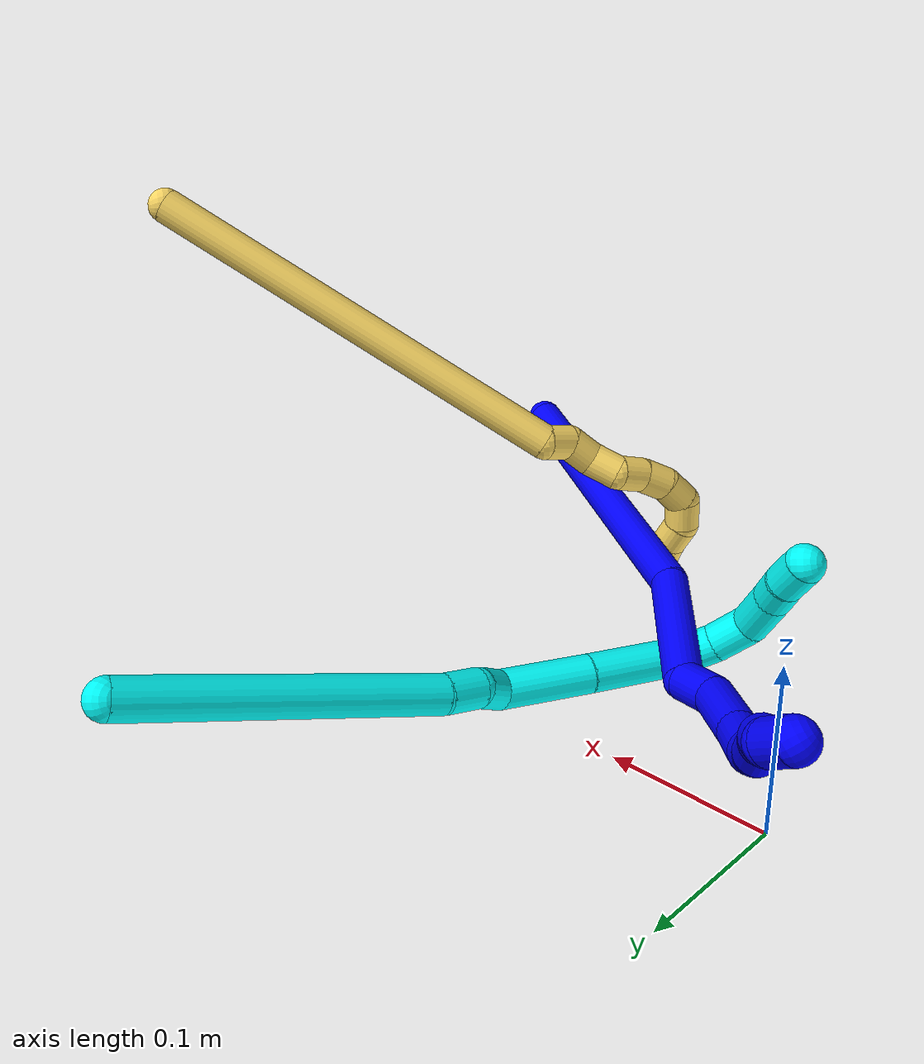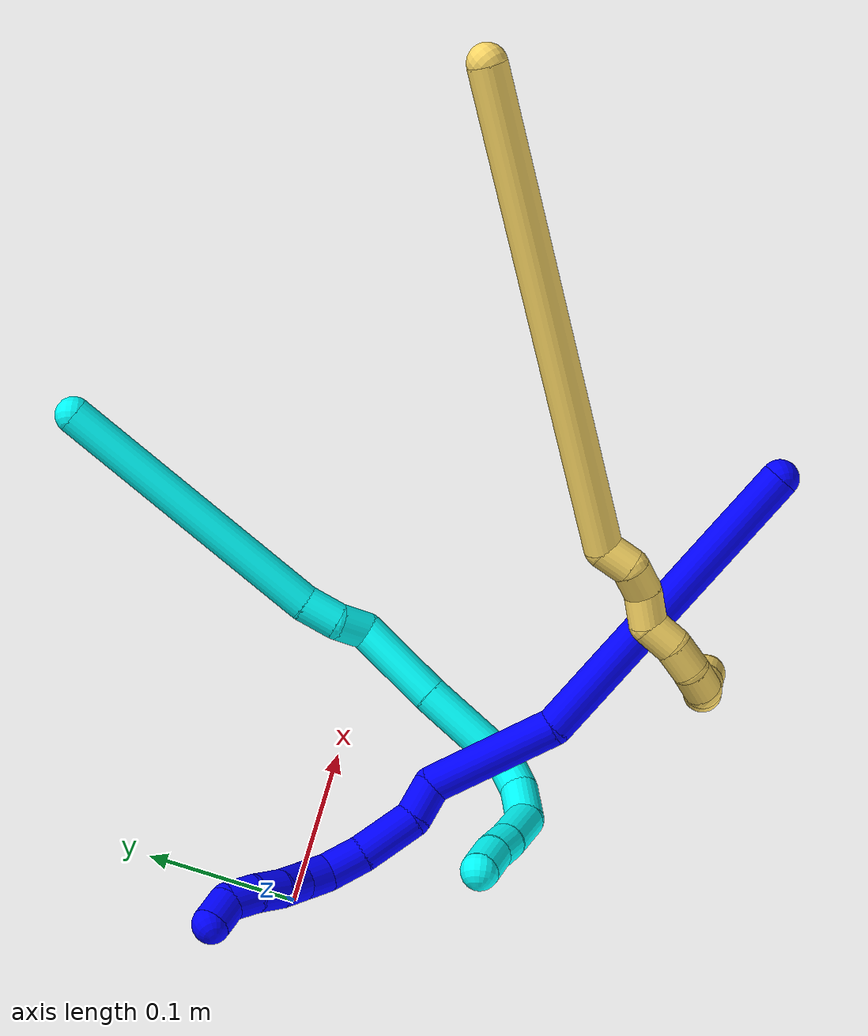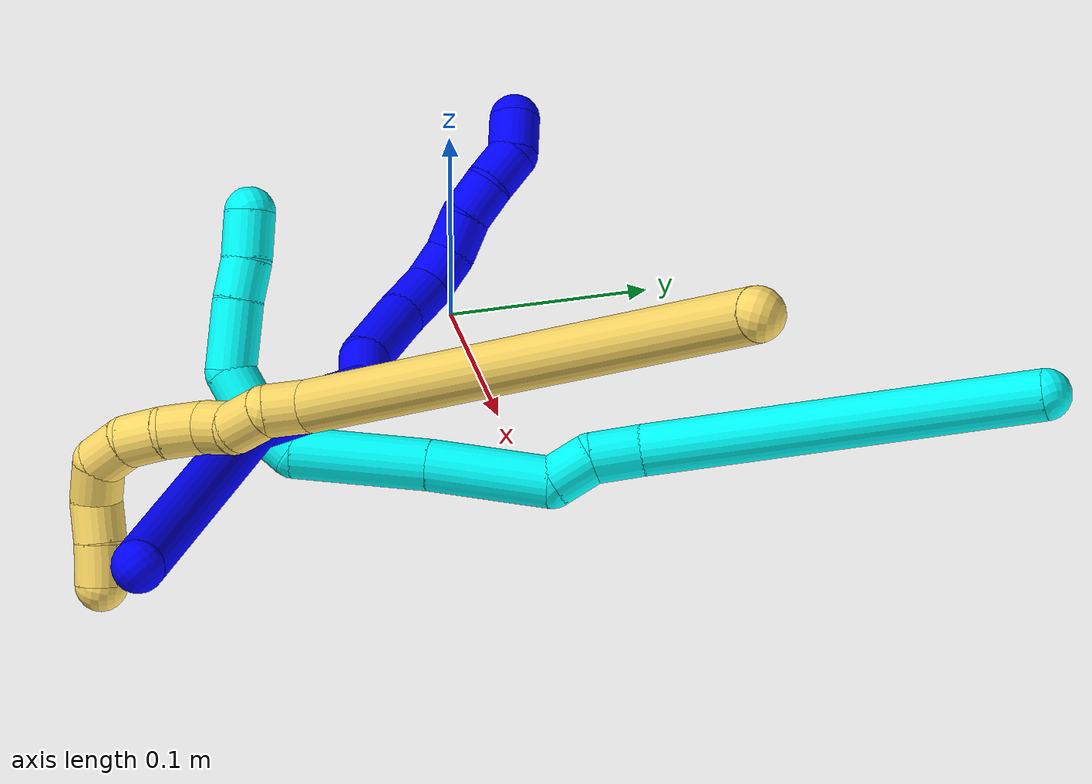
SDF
<sdf version="1.7">
 <world name="default">
  <model name="1">
   <static>0</static>
   <link name="1">
    <collision name="collision-cylinder-e_1_1_4">
     <pose>0.028007 0.102945 -0.020155 -1.76414 0.260901 -0.316087</pose>
     <geometry><cylinder><radius>0.0125</radius><length>0.217148</length></cylinder></geometry>
     <surface>
      <friction><ode><mu>1.16</mu><mu2>1.16</mu2><slip1>0</slip1><slip2>0</slip2></ode></friction>
      <contact><ode><kp>1e+06</kp><kd>1</kd><max_vel>0</max_vel><min_depth>0.001</min_depth></ode></contact>
     </surface>
    </collision>
    <visual name="visual-cylinder-e_1_1_4">
     <pose>0.028007 0.102945 -0.020155 -1.76414 0.260901 -0.316087</pose>
     <geometry><cylinder><radius>0.0125</radius><length>0.217148</length></cylinder></geometry>
     <material><ambient>0 0 1 1</ambient></material>
    </visual>
    <collision name="collision-cylinder-e_2_4_5">
     <pose>0.057969 0.25062 -0.03468 -1.44558 0.043336 -0.038225</pose>
     <geometry><cylinder><radius>0.0125</radius><length>0.09025</length></cylinder></geometry>
     <surface>
      <friction><ode><mu>1.16</mu><mu2>1.16</mu2><slip1>0</slip1><slip2>0</slip2></ode></friction>
      <contact><ode><kp>1e+06</kp><kd>1</kd><max_vel>0</max_vel><min_depth>0.001</min_depth></ode></contact>
     </surface>
    </collision>
    <visual name="visual-cylinder-e_2_4_5">
     <pose>0.057969 0.25062 -0.03468 -1.44558 0.043336 -0.038225</pose>
     <geometry><cylinder><radius>0.0125</radius><length>0.09025</length></cylinder></geometry>
     <material><ambient>0 0 1 1</ambient></material>
    </visual>
    <collision name="collision-cylinder-e_3_5_6">
     <pose>0.061685 0.305932 -0.036057 -2.15561 0.137947 -0.255774</pose>
     <geometry><cylinder><radius>0.0125</radius><length>0.025627</length></cylinder></geometry>
     <surface>
      <friction><ode><mu>1.16</mu><mu2>1.16</mu2><slip1>0</slip1><slip2>0</slip2></ode></friction>
      <contact><ode><kp>1e+06</kp><kd>1</kd><max_vel>0</max_vel><min_depth>0.001</min_depth></ode></contact>
     </surface>
    </collision>
    <visual name="visual-cylinder-e_3_5_6">
     <pose>0.061685 0.305932 -0.036057 -2.15561 0.137947 -0.255774</pose>
     <geometry><cylinder><radius>0.0125</radius><length>0.025627</length></cylinder></geometry>
     <material><ambient>0 0 1 1</ambient></material>
    </visual>
    <collision name="collision-cylinder-e_4_6_7">
     <pose>0.061431 0.336282 -0.047275 -1.78073 -0.099442 0.12281</pose>
     <geometry><cylinder><radius>0.0125</radius><length>0.040622</length></cylinder></geometry>
     <surface>
      <friction><ode><mu>1.16</mu><mu2>1.16</mu2><slip1>0</slip1><slip2>0</slip2></ode></friction>
      <contact><ode><kp>1e+06</kp><kd>1</kd><max_vel>0</max_vel><min_depth>0.001</min_depth></ode></contact>
     </surface>
    </collision>
    <visual name="visual-cylinder-e_4_6_7">
     <pose>0.061431 0.336282 -0.047275 -1.78073 -0.099442 0.12281</pose>
     <geometry><cylinder><radius>0.0125</radius><length>0.040622</length></cylinder></geometry>
     <material><ambient>0 0 1 1</ambient></material>
    </visual>
    <collision name="collision-cylinder-e_5_7_8">
     <pose>0.056379 0.36856 -0.053654 -1.74236 -0.234674 0.278308</pose>
     <geometry><cylinder><radius>0.0125</radius><length>0.026111</length></cylinder></geometry>
     <surface>
      <friction><ode><mu>1.16</mu><mu2>1.16</mu2><slip1>0</slip1><slip2>0</slip2></ode></friction>
      <contact><ode><kp>1e+06</kp><kd>1</kd><max_vel>0</max_vel><min_depth>0.001</min_depth></ode></contact>
     </surface>
    </collision>
    <visual name="visual-cylinder-e_5_7_8">
     <pose>0.056379 0.36856 -0.053654 -1.74236 -0.234674 0.278308</pose>
     <geometry><cylinder><radius>0.0125</radius><length>0.026111</length></cylinder></geometry>
     <material><ambient>0 0 1 1</ambient></material>
    </visual>
    <collision name="collision-cylinder-e_6_8_9">
     <pose>0.047414 0.388661 -0.058841 -1.94941 -0.627873 0.892729</pose>
     <geometry><cylinder><radius>0.0125</radius><length>0.020186</length></cylinder></geometry>
     <surface>
      <friction><ode><mu>1.16</mu><mu2>1.16</mu2><slip1>0</slip1><slip2>0</slip2></ode></friction>
      <contact><ode><kp>1e+06</kp><kd>1</kd><max_vel>0</max_vel><min_depth>0.001</min_depth></ode></contact>
     </surface>
    </collision>
    <visual name="visual-cylinder-e_6_8_9">
     <pose>0.047414 0.388661 -0.058841 -1.94941 -0.627873 0.892729</pose>
     <geometry><cylinder><radius>0.0125</radius><length>0.020186</length></cylinder></geometry>
     <material><ambient>0 0 1 1</ambient></material>
    </visual>
    <collision name="collision-cylinder-e_7_9_10">
     <pose>0.03422 0.401347 -0.066477 -2.30686 -0.812843 1.54097</pose>
     <geometry><cylinder><radius>0.0125</radius><length>0.020007</length></cylinder></geometry>
     <surface>
      <friction><ode><mu>1.16</mu><mu2>1.16</mu2><slip1>0</slip1><slip2>0</slip2></ode></friction>
      <contact><ode><kp>1e+06</kp><kd>1</kd><max_vel>0</max_vel><min_depth>0.001</min_depth></ode></contact>
     </surface>
    </collision>
    <visual name="visual-cylinder-e_7_9_10">
     <pose>0.03422 0.401347 -0.066477 -2.30686 -0.812843 1.54097</pose>
     <geometry><cylinder><radius>0.0125</radius><length>0.020007</length></cylinder></geometry>
     <material><ambient>0 0 1 1</ambient></material>
    </visual>
    <collision name="collision-cylinder-e_8_10_11">
     <pose>0.019768 0.412901 -0.073688 -1.95268 -0.801534 1.1197</pose>
     <geometry><cylinder><radius>0.0125</radius><length>0.020007</length></cylinder></geometry>
     <surface>
      <friction><ode><mu>1.16</mu><mu2>1.16</mu2><slip1>0</slip1><slip2>0</slip2></ode></friction>
      <contact><ode><kp>1e+06</kp><kd>1</kd><max_vel>0</max_vel><min_depth>0.001</min_depth></ode></contact>
     </surface>
    </collision>
    <visual name="visual-cylinder-e_8_10_11">
     <pose>0.019768 0.412901 -0.073688 -1.95268 -0.801534 1.1197</pose>
     <geometry><cylinder><radius>0.0125</radius><length>0.020007</length></cylinder></geometry>
     <material><ambient>0 0 1 1</ambient></material>
    </visual>
    <collision name="collision-cylinder-e_9_11_12">
     <pose>0.006914 0.427291 -0.078517 -1.84558 -0.602349 0.778711</pose>
     <geometry><cylinder><radius>0.0125</radius><length>0.020005</length></cylinder></geometry>
     <surface>
      <friction><ode><mu>1.16</mu><mu2>1.16</mu2><slip1>0</slip1><slip2>0</slip2></ode></friction>
      <contact><ode><kp>1e+06</kp><kd>1</kd><max_vel>0</max_vel><min_depth>0.001</min_depth></ode></contact>
     </surface>
    </collision>
    <visual name="visual-cylinder-e_9_11_12">
     <pose>0.006914 0.427291 -0.078517 -1.84558 -0.602349 0.778711</pose>
     <geometry><cylinder><radius>0.0125</radius><length>0.020005</length></cylinder></geometry>
     <material><ambient>0 0 1 1</ambient></material>
    </visual>
    <collision name="collision-cylinder-e_10_12_2">
     <pose>-0.001556 0.441785 -0.087786 -2.3909 -0.283624 0.695241</pose>
     <geometry><cylinder><radius>0.0125</radius><length>0.020036</length></cylinder></geometry>
     <surface>
      <friction><ode><mu>1.16</mu><mu2>1.16</mu2><slip1>0</slip1><slip2>0</slip2></ode></friction>
      <contact><ode><kp>1e+06</kp><kd>1</kd><max_vel>0</max_vel><min_depth>0.001</min_depth></ode></contact>
     </surface>
    </collision>
    <visual name="visual-cylinder-e_10_12_2">
     <pose>-0.001556 0.441785 -0.087786 -2.3909 -0.283624 0.695241</pose>
     <geometry><cylinder><radius>0.0125</radius><length>0.020036</length></cylinder></geometry>
     <material><ambient>0 0 1 1</ambient></material>
    </visual>
    <collision name="collision-sphere-2">
     <pose>-0.00436 0.448346 -0.094819 0 -0 0</pose>
     <geometry><sphere><radius>0.0125</radius></sphere></geometry>
     <surface>
      <friction><ode><mu>1.16</mu><mu2>1.16</mu2><slip1>0</slip1><slip2>0</slip2></ode></friction>
      <contact><ode><kp>1e+06</kp><kd>1</kd><max_vel>0</max_vel><min_depth>0.001</min_depth></ode></contact>
     </surface>
    </collision>
    <visual name="visual-sphere-2">
     <pose>-0.00436 0.448346 -0.094819 0 -0 0</pose>
     <geometry><sphere><radius>0.0125</radius></sphere></geometry>
     <material><ambient>0 0 1 1</ambient></material>
    </visual>
    <collision name="collision-sphere-12">
     <pose>0.001247 0.435224 -0.080754 0 -0 0</pose>
     <geometry><sphere><radius>0.0125</radius></sphere></geometry>
     <surface>
      <friction><ode><mu>1.16</mu><mu2>1.16</mu2><slip1>0</slip1><slip2>0</slip2></ode></friction>
      <contact><ode><kp>1e+06</kp><kd>1</kd><max_vel>0</max_vel><min_depth>0.001</min_depth></ode></contact>
     </surface>
    </collision>
    <visual name="visual-sphere-12">
     <pose>0.001247 0.435224 -0.080754 0 -0 0</pose>
     <geometry><sphere><radius>0.0125</radius></sphere></geometry>
     <material><ambient>0 0 1 1</ambient></material>
    </visual>
    <collision name="collision-sphere-11">
     <pose>0.012581 0.419358 -0.076281 0 -0 0</pose>
     <geometry><sphere><radius>0.0125</radius></sphere></geometry>
     <surface>
      <friction><ode><mu>1.16</mu><mu2>1.16</mu2><slip1>0</slip1><slip2>0</slip2></ode></friction>
      <contact><ode><kp>1e+06</kp><kd>1</kd><max_vel>0</max_vel><min_depth>0.001</min_depth></ode></contact>
     </surface>
    </collision>
    <visual name="visual-sphere-11">
     <pose>0.012581 0.419358 -0.076281 0 -0 0</pose>
     <geometry><sphere><radius>0.0125</radius></sphere></geometry>
     <material><ambient>0 0 1 1</ambient></material>
    </visual>
    <collision name="collision-sphere-10">
     <pose>0.026955 0.406444 -0.071094 0 -0 0</pose>
     <geometry><sphere><radius>0.0125</radius></sphere></geometry>
     <surface>
      <friction><ode><mu>1.16</mu><mu2>1.16</mu2><slip1>0</slip1><slip2>0</slip2></ode></friction>
      <contact><ode><kp>1e+06</kp><kd>1</kd><max_vel>0</max_vel><min_depth>0.001</min_depth></ode></contact>
     </surface>
    </collision>
    <visual name="visual-sphere-10">
     <pose>0.026955 0.406444 -0.071094 0 -0 0</pose>
     <geometry><sphere><radius>0.0125</radius></sphere></geometry>
     <material><ambient>0 0 1 1</ambient></material>
    </visual>
    <collision name="collision-sphere-9">
     <pose>0.041485 0.396251 -0.061861 0 -0 0</pose>
     <geometry><sphere><radius>0.0125</radius></sphere></geometry>
     <surface>
      <friction><ode><mu>1.16</mu><mu2>1.16</mu2><slip1>0</slip1><slip2>0</slip2></ode></friction>
      <contact><ode><kp>1e+06</kp><kd>1</kd><max_vel>0</max_vel><min_depth>0.001</min_depth></ode></contact>
     </surface>
    </collision>
    <visual name="visual-sphere-9">
     <pose>0.041485 0.396251 -0.061861 0 -0 0</pose>
     <geometry><sphere><radius>0.0125</radius></sphere></geometry>
     <material><ambient>0 0 1 1</ambient></material>
    </visual>
    <collision name="collision-sphere-4">
     <pose>0.056014 0.205891 -0.040311 0 -0 0</pose>
     <geometry><sphere><radius>0.0125</radius></sphere></geometry>
     <surface>
      <friction><ode><mu>1.16</mu><mu2>1.16</mu2><slip1>0</slip1><slip2>0</slip2></ode></friction>
      <contact><ode><kp>1e+06</kp><kd>1</kd><max_vel>0</max_vel><min_depth>0.001</min_depth></ode></contact>
     </surface>
    </collision>
    <visual name="visual-sphere-4">
     <pose>0.056014 0.205891 -0.040311 0 -0 0</pose>
     <geometry><sphere><radius>0.0125</radius></sphere></geometry>
     <material><ambient>0 0 1 1</ambient></material>
    </visual>
    <collision name="collision-sphere-1">
     <geometry><sphere><radius>0.0125</radius></sphere></geometry>
     <surface>
      <friction><ode><mu>1.16</mu><mu2>1.16</mu2><slip1>0</slip1><slip2>0</slip2></ode></friction>
      <contact><ode><kp>1e+06</kp><kd>1</kd><max_vel>0</max_vel><min_depth>0.001</min_depth></ode></contact>
     </surface>
    </collision>
    <visual name="visual-sphere-1">
     <geometry><sphere><radius>0.0125</radius></sphere></geometry>
     <material><ambient>0 0 1 1</ambient></material>
    </visual>
    <collision name="collision-sphere-8">
     <pose>0.053343 0.381071 -0.055822 0 -0 0</pose>
     <geometry><sphere><radius>0.0125</radius></sphere></geometry>
     <surface>
      <friction><ode><mu>1.16</mu><mu2>1.16</mu2><slip1>0</slip1><slip2>0</slip2></ode></friction>
      <contact><ode><kp>1e+06</kp><kd>1</kd><max_vel>0</max_vel><min_depth>0.001</min_depth></ode></contact>
     </surface>
    </collision>
    <visual name="visual-sphere-8">
     <pose>0.053343 0.381071 -0.055822 0 -0 0</pose>
     <geometry><sphere><radius>0.0125</radius></sphere></geometry>
     <material><ambient>0 0 1 1</ambient></material>
    </visual>
    <collision name="collision-sphere-5">
     <pose>0.059924 0.29535 -0.02905 0 -0 0</pose>
     <geometry><sphere><radius>0.0125</radius></sphere></geometry>
     <surface>
      <friction><ode><mu>1.16</mu><mu2>1.16</mu2><slip1>0</slip1><slip2>0</slip2></ode></friction>
      <contact><ode><kp>1e+06</kp><kd>1</kd><max_vel>0</max_vel><min_depth>0.001</min_depth></ode></contact>
     </surface>
    </collision>
    <visual name="visual-sphere-5">
     <pose>0.059924 0.29535 -0.02905 0 -0 0</pose>
     <geometry><sphere><radius>0.0125</radius></sphere></geometry>
     <material><ambient>0 0 1 1</ambient></material>
    </visual>
    <collision name="collision-sphere-6">
     <pose>0.063447 0.316515 -0.043063 0 -0 0</pose>
     <geometry><sphere><radius>0.0125</radius></sphere></geometry>
     <surface>
      <friction><ode><mu>1.16</mu><mu2>1.16</mu2><slip1>0</slip1><slip2>0</slip2></ode></friction>
      <contact><ode><kp>1e+06</kp><kd>1</kd><max_vel>0</max_vel><min_depth>0.001</min_depth></ode></contact>
     </surface>
    </collision>
    <visual name="visual-sphere-6">
     <pose>0.063447 0.316515 -0.043063 0 -0 0</pose>
     <geometry><sphere><radius>0.0125</radius></sphere></geometry>
     <material><ambient>0 0 1 1</ambient></material>
    </visual>
    <collision name="collision-sphere-7">
     <pose>0.059415 0.356049 -0.051486 0 -0 0</pose>
     <geometry><sphere><radius>0.0125</radius></sphere></geometry>
     <surface>
      <friction><ode><mu>1.16</mu><mu2>1.16</mu2><slip1>0</slip1><slip2>0</slip2></ode></friction>
      <contact><ode><kp>1e+06</kp><kd>1</kd><max_vel>0</max_vel><min_depth>0.001</min_depth></ode></contact>
     </surface>
    </collision>
    <visual name="visual-sphere-7">
     <pose>0.059415 0.356049 -0.051486 0 -0 0</pose>
     <geometry><sphere><radius>0.0125</radius></sphere></geometry>
     <material><ambient>0 0 1 1</ambient></material>
    </visual>
    <inertial>
     <pose>0.038012 0.235266 -0.038147 0 -0 0</pose>
     <mass>0.5</mass>
     <inertia>
      <ixx>0.000615</ixx>
      <ixy>0</ixy>
      <ixz>0</ixz>
      <iyy>-0.000304</iyy>
      <iyz>0</iyz>
      <izz>-0.001125</izz>
     </inertia>
    </inertial>
   </link>
   <pose>0.344964 -0.224132 0.098502 -2.89065 0.903148 -2.14565</pose>
  </model>
  <model name="3">
   <static>0</static>
   <link name="3">
    <collision name="collision-cylinder-e_1_1_4">
     <pose>-0.01605 -0.08732 -0.041835 2.01758 -0.164268 -0.259962</pose>
     <geometry><cylinder><radius>0.0125</radius><length>0.19629</length></cylinder></geometry>
     <surface>
      <friction><ode><mu>1.16</mu><mu2>1.16</mu2><slip1>0</slip1><slip2>0</slip2></ode></friction>
      <contact><ode><kp>1e+06</kp><kd>1</kd><max_vel>0</max_vel><min_depth>0.001</min_depth></ode></contact>
     </surface>
    </collision>
    <visual name="visual-cylinder-e_1_1_4">
     <pose>-0.01605 -0.08732 -0.041835 2.01758 -0.164268 -0.259962</pose>
     <geometry><cylinder><radius>0.0125</radius><length>0.19629</length></cylinder></geometry>
     <material><ambient>0.003922 1 0.996078 1</ambient></material>
    </visual>
    <collision name="collision-cylinder-e_2_4_5">
     <pose>-0.035958 -0.185996 -0.087634 1.90666 -0.310433 -0.433785</pose>
     <geometry><cylinder><radius>0.0125</radius><length>0.025265</length></cylinder></geometry>
     <surface>
      <friction><ode><mu>1.16</mu><mu2>1.16</mu2><slip1>0</slip1><slip2>0</slip2></ode></friction>
      <contact><ode><kp>1e+06</kp><kd>1</kd><max_vel>0</max_vel><min_depth>0.001</min_depth></ode></contact>
     </surface>
    </collision>
    <visual name="visual-cylinder-e_2_4_5">
     <pose>-0.035958 -0.185996 -0.087634 1.90666 -0.310433 -0.433785</pose>
     <geometry><cylinder><radius>0.0125</radius><length>0.025265</length></cylinder></geometry>
     <material><ambient>0.003922 1 0.996078 1</ambient></material>
    </visual>
    <collision name="collision-cylinder-e_3_5_6">
     <pose>-0.040951 -0.208229 -0.091478 1.55972 -0.10383 -0.102688</pose>
     <geometry><cylinder><radius>0.0125</radius><length>0.021872</length></cylinder></geometry>
     <surface>
      <friction><ode><mu>1.16</mu><mu2>1.16</mu2><slip1>0</slip1><slip2>0</slip2></ode></friction>
      <contact><ode><kp>1e+06</kp><kd>1</kd><max_vel>0</max_vel><min_depth>0.001</min_depth></ode></contact>
     </surface>
    </collision>
    <visual name="visual-cylinder-e_3_5_6">
     <pose>-0.040951 -0.208229 -0.091478 1.55972 -0.10383 -0.102688</pose>
     <geometry><cylinder><radius>0.0125</radius><length>0.021872</length></cylinder></geometry>
     <material><ambient>0.003922 1 0.996078 1</ambient></material>
    </visual>
    <collision name="collision-cylinder-e_4_6_7">
     <pose>-0.051197 -0.241451 -0.109701 2.25814 -0.305373 -0.629209</pose>
     <geometry><cylinder><radius>0.0125</radius><length>0.060625</length></cylinder></geometry>
     <surface>
      <friction><ode><mu>1.16</mu><mu2>1.16</mu2><slip1>0</slip1><slip2>0</slip2></ode></friction>
      <contact><ode><kp>1e+06</kp><kd>1</kd><max_vel>0</max_vel><min_depth>0.001</min_depth></ode></contact>
     </surface>
    </collision>
    <visual name="visual-cylinder-e_4_6_7">
     <pose>-0.051197 -0.241451 -0.109701 2.25814 -0.305373 -0.629209</pose>
     <geometry><cylinder><radius>0.0125</radius><length>0.060625</length></cylinder></geometry>
     <material><ambient>0.003922 1 0.996078 1</ambient></material>
    </visual>
    <collision name="collision-cylinder-e_5_7_8">
     <pose>-0.070712 -0.28948 -0.146643 2.19759 -0.316942 -0.606784</pose>
     <geometry><cylinder><radius>0.0125</radius><length>0.066746</length></cylinder></geometry>
     <surface>
      <friction><ode><mu>1.16</mu><mu2>1.16</mu2><slip1>0</slip1><slip2>0</slip2></ode></friction>
      <contact><ode><kp>1e+06</kp><kd>1</kd><max_vel>0</max_vel><min_depth>0.001</min_depth></ode></contact>
     </surface>
    </collision>
    <visual name="visual-cylinder-e_5_7_8">
     <pose>-0.070712 -0.28948 -0.146643 2.19759 -0.316942 -0.606784</pose>
     <geometry><cylinder><radius>0.0125</radius><length>0.066746</length></cylinder></geometry>
     <material><ambient>0.003922 1 0.996078 1</ambient></material>
    </visual>
    <collision name="collision-cylinder-e_6_8_9">
     <pose>-0.085943 -0.318371 -0.175454 2.83713 -0.423909 -1.90285</pose>
     <geometry><cylinder><radius>0.0125</radius><length>0.023484</length></cylinder></geometry>
     <surface>
      <friction><ode><mu>1.16</mu><mu2>1.16</mu2><slip1>0</slip1><slip2>0</slip2></ode></friction>
      <contact><ode><kp>1e+06</kp><kd>1</kd><max_vel>0</max_vel><min_depth>0.001</min_depth></ode></contact>
     </surface>
    </collision>
    <visual name="visual-cylinder-e_6_8_9">
     <pose>-0.085943 -0.318371 -0.175454 2.83713 -0.423909 -1.90285</pose>
     <geometry><cylinder><radius>0.0125</radius><length>0.023484</length></cylinder></geometry>
     <material><ambient>0.003922 1 0.996078 1</ambient></material>
    </visual>
    <collision name="collision-cylinder-e_7_9_10">
     <pose>-0.096645 -0.320575 -0.198031 -3.06056 -0.442086 2.78464</pose>
     <geometry><cylinder><radius>0.0125</radius><length>0.027454</length></cylinder></geometry>
     <surface>
      <friction><ode><mu>1.16</mu><mu2>1.16</mu2><slip1>0</slip1><slip2>0</slip2></ode></friction>
      <contact><ode><kp>1e+06</kp><kd>1</kd><max_vel>0</max_vel><min_depth>0.001</min_depth></ode></contact>
     </surface>
    </collision>
    <visual name="visual-cylinder-e_7_9_10">
     <pose>-0.096645 -0.320575 -0.198031 -3.06056 -0.442086 2.78464</pose>
     <geometry><cylinder><radius>0.0125</radius><length>0.027454</length></cylinder></geometry>
     <material><ambient>0.003922 1 0.996078 1</ambient></material>
    </visual>
    <collision name="collision-cylinder-e_8_10_11">
     <pose>-0.108223 -0.308525 -0.222511 -2.40229 -0.334872 0.822666</pose>
     <geometry><cylinder><radius>0.0125</radius><length>0.034716</length></cylinder></geometry>
     <surface>
      <friction><ode><mu>1.16</mu><mu2>1.16</mu2><slip1>0</slip1><slip2>0</slip2></ode></friction>
      <contact><ode><kp>1e+06</kp><kd>1</kd><max_vel>0</max_vel><min_depth>0.001</min_depth></ode></contact>
     </surface>
    </collision>
    <visual name="visual-cylinder-e_8_10_11">
     <pose>-0.108223 -0.308525 -0.222511 -2.40229 -0.334872 0.822666</pose>
     <geometry><cylinder><radius>0.0125</radius><length>0.034716</length></cylinder></geometry>
     <material><ambient>0.003922 1 0.996078 1</ambient></material>
    </visual>
    <collision name="collision-cylinder-e_9_11_12">
     <pose>-0.116617 -0.290394 -0.241169 -2.31648 -0.271979 0.606027</pose>
     <geometry><cylinder><radius>0.0125</radius><length>0.020025</length></cylinder></geometry>
     <surface>
      <friction><ode><mu>1.16</mu><mu2>1.16</mu2><slip1>0</slip1><slip2>0</slip2></ode></friction>
      <contact><ode><kp>1e+06</kp><kd>1</kd><max_vel>0</max_vel><min_depth>0.001</min_depth></ode></contact>
     </surface>
    </collision>
    <visual name="visual-cylinder-e_9_11_12">
     <pose>-0.116617 -0.290394 -0.241169 -2.31648 -0.271979 0.606027</pose>
     <geometry><cylinder><radius>0.0125</radius><length>0.020025</length></cylinder></geometry>
     <material><ambient>0.003922 1 0.996078 1</ambient></material>
    </visual>
    <collision name="collision-cylinder-e_10_12_2">
     <pose>-0.122922 -0.276276 -0.256419 -2.46213 -0.31241 0.83837</pose>
     <geometry><cylinder><radius>0.0125</radius><length>0.023523</length></cylinder></geometry>
     <surface>
      <friction><ode><mu>1.16</mu><mu2>1.16</mu2><slip1>0</slip1><slip2>0</slip2></ode></friction>
      <contact><ode><kp>1e+06</kp><kd>1</kd><max_vel>0</max_vel><min_depth>0.001</min_depth></ode></contact>
     </surface>
    </collision>
    <visual name="visual-cylinder-e_10_12_2">
     <pose>-0.122922 -0.276276 -0.256419 -2.46213 -0.31241 0.83837</pose>
     <geometry><cylinder><radius>0.0125</radius><length>0.023523</length></cylinder></geometry>
     <material><ambient>0.003922 1 0.996078 1</ambient></material>
    </visual>
    <collision name="collision-sphere-2">
     <pose>-0.126537 -0.269243 -0.265126 0 -0 0</pose>
     <geometry><sphere><radius>0.0125</radius></sphere></geometry>
     <surface>
      <friction><ode><mu>1.16</mu><mu2>1.16</mu2><slip1>0</slip1><slip2>0</slip2></ode></friction>
      <contact><ode><kp>1e+06</kp><kd>1</kd><max_vel>0</max_vel><min_depth>0.001</min_depth></ode></contact>
     </surface>
    </collision>
    <visual name="visual-sphere-2">
     <pose>-0.126537 -0.269243 -0.265126 0 -0 0</pose>
     <geometry><sphere><radius>0.0125</radius></sphere></geometry>
     <material><ambient>0.003922 1 0.996078 1</ambient></material>
    </visual>
    <collision name="collision-sphere-12">
     <pose>-0.119307 -0.283309 -0.247712 0 -0 0</pose>
     <geometry><sphere><radius>0.0125</radius></sphere></geometry>
     <surface>
      <friction><ode><mu>1.16</mu><mu2>1.16</mu2><slip1>0</slip1><slip2>0</slip2></ode></friction>
      <contact><ode><kp>1e+06</kp><kd>1</kd><max_vel>0</max_vel><min_depth>0.001</min_depth></ode></contact>
     </surface>
    </collision>
    <visual name="visual-sphere-12">
     <pose>-0.119307 -0.283309 -0.247712 0 -0 0</pose>
     <geometry><sphere><radius>0.0125</radius></sphere></geometry>
     <material><ambient>0.003922 1 0.996078 1</ambient></material>
    </visual>
    <collision name="collision-sphere-11">
     <pose>-0.113927 -0.297479 -0.234625 0 -0 0</pose>
     <geometry><sphere><radius>0.0125</radius></sphere></geometry>
     <surface>
      <friction><ode><mu>1.16</mu><mu2>1.16</mu2><slip1>0</slip1><slip2>0</slip2></ode></friction>
      <contact><ode><kp>1e+06</kp><kd>1</kd><max_vel>0</max_vel><min_depth>0.001</min_depth></ode></contact>
     </surface>
    </collision>
    <visual name="visual-sphere-11">
     <pose>-0.113927 -0.297479 -0.234625 0 -0 0</pose>
     <geometry><sphere><radius>0.0125</radius></sphere></geometry>
     <material><ambient>0.003922 1 0.996078 1</ambient></material>
    </visual>
    <collision name="collision-sphere-10">
     <pose>-0.102518 -0.319571 -0.210397 0 -0 0</pose>
     <geometry><sphere><radius>0.0125</radius></sphere></geometry>
     <surface>
      <friction><ode><mu>1.16</mu><mu2>1.16</mu2><slip1>0</slip1><slip2>0</slip2></ode></friction>
      <contact><ode><kp>1e+06</kp><kd>1</kd><max_vel>0</max_vel><min_depth>0.001</min_depth></ode></contact>
     </surface>
    </collision>
    <visual name="visual-sphere-10">
     <pose>-0.102518 -0.319571 -0.210397 0 -0 0</pose>
     <geometry><sphere><radius>0.0125</radius></sphere></geometry>
     <material><ambient>0.003922 1 0.996078 1</ambient></material>
    </visual>
    <collision name="collision-sphere-9">
     <pose>-0.090773 -0.321579 -0.185664 0 -0 0</pose>
     <geometry><sphere><radius>0.0125</radius></sphere></geometry>
     <surface>
      <friction><ode><mu>1.16</mu><mu2>1.16</mu2><slip1>0</slip1><slip2>0</slip2></ode></friction>
      <contact><ode><kp>1e+06</kp><kd>1</kd><max_vel>0</max_vel><min_depth>0.001</min_depth></ode></contact>
     </surface>
    </collision>
    <visual name="visual-sphere-9">
     <pose>-0.090773 -0.321579 -0.185664 0 -0 0</pose>
     <geometry><sphere><radius>0.0125</radius></sphere></geometry>
     <material><ambient>0.003922 1 0.996078 1</ambient></material>
    </visual>
    <collision name="collision-sphere-4">
     <pose>-0.032099 -0.17464 -0.08367 0 -0 0</pose>
     <geometry><sphere><radius>0.0125</radius></sphere></geometry>
     <surface>
      <friction><ode><mu>1.16</mu><mu2>1.16</mu2><slip1>0</slip1><slip2>0</slip2></ode></friction>
      <contact><ode><kp>1e+06</kp><kd>1</kd><max_vel>0</max_vel><min_depth>0.001</min_depth></ode></contact>
     </surface>
    </collision>
    <visual name="visual-sphere-4">
     <pose>-0.032099 -0.17464 -0.08367 0 -0 0</pose>
     <geometry><sphere><radius>0.0125</radius></sphere></geometry>
     <material><ambient>0.003922 1 0.996078 1</ambient></material>
    </visual>
    <collision name="collision-sphere-1">
     <geometry><sphere><radius>0.0125</radius></sphere></geometry>
     <surface>
      <friction><ode><mu>1.16</mu><mu2>1.16</mu2><slip1>0</slip1><slip2>0</slip2></ode></friction>
      <contact><ode><kp>1e+06</kp><kd>1</kd><max_vel>0</max_vel><min_depth>0.001</min_depth></ode></contact>
     </surface>
    </collision>
    <visual name="visual-sphere-1">
     <geometry><sphere><radius>0.0125</radius></sphere></geometry>
     <material><ambient>0.003922 1 0.996078 1</ambient></material>
    </visual>
    <collision name="collision-sphere-8">
     <pose>-0.081113 -0.315162 -0.165243 0 -0 0</pose>
     <geometry><sphere><radius>0.0125</radius></sphere></geometry>
     <surface>
      <friction><ode><mu>1.16</mu><mu2>1.16</mu2><slip1>0</slip1><slip2>0</slip2></ode></friction>
      <contact><ode><kp>1e+06</kp><kd>1</kd><max_vel>0</max_vel><min_depth>0.001</min_depth></ode></contact>
     </surface>
    </collision>
    <visual name="visual-sphere-8">
     <pose>-0.081113 -0.315162 -0.165243 0 -0 0</pose>
     <geometry><sphere><radius>0.0125</radius></sphere></geometry>
     <material><ambient>0.003922 1 0.996078 1</ambient></material>
    </visual>
    <collision name="collision-sphere-5">
     <pose>-0.039817 -0.197353 -0.091598 0 -0 0</pose>
     <geometry><sphere><radius>0.0125</radius></sphere></geometry>
     <surface>
      <friction><ode><mu>1.16</mu><mu2>1.16</mu2><slip1>0</slip1><slip2>0</slip2></ode></friction>
      <contact><ode><kp>1e+06</kp><kd>1</kd><max_vel>0</max_vel><min_depth>0.001</min_depth></ode></contact>
     </surface>
    </collision>
    <visual name="visual-sphere-5">
     <pose>-0.039817 -0.197353 -0.091598 0 -0 0</pose>
     <geometry><sphere><radius>0.0125</radius></sphere></geometry>
     <material><ambient>0.003922 1 0.996078 1</ambient></material>
    </visual>
    <collision name="collision-sphere-6">
     <pose>-0.042084 -0.219106 -0.091358 0 -0 0</pose>
     <geometry><sphere><radius>0.0125</radius></sphere></geometry>
     <surface>
      <friction><ode><mu>1.16</mu><mu2>1.16</mu2><slip1>0</slip1><slip2>0</slip2></ode></friction>
      <contact><ode><kp>1e+06</kp><kd>1</kd><max_vel>0</max_vel><min_depth>0.001</min_depth></ode></contact>
     </surface>
    </collision>
    <visual name="visual-sphere-6">
     <pose>-0.042084 -0.219106 -0.091358 0 -0 0</pose>
     <geometry><sphere><radius>0.0125</radius></sphere></geometry>
     <material><ambient>0.003922 1 0.996078 1</ambient></material>
    </visual>
    <collision name="collision-sphere-7">
     <pose>-0.060311 -0.263797 -0.128044 0 -0 0</pose>
     <geometry><sphere><radius>0.0125</radius></sphere></geometry>
     <surface>
      <friction><ode><mu>1.16</mu><mu2>1.16</mu2><slip1>0</slip1><slip2>0</slip2></ode></friction>
      <contact><ode><kp>1e+06</kp><kd>1</kd><max_vel>0</max_vel><min_depth>0.001</min_depth></ode></contact>
     </surface>
    </collision>
    <visual name="visual-sphere-7">
     <pose>-0.060311 -0.263797 -0.128044 0 -0 0</pose>
     <geometry><sphere><radius>0.0125</radius></sphere></geometry>
     <material><ambient>0.003922 1 0.996078 1</ambient></material>
    </visual>
    <inertial>
     <pose>-0.052867 -0.199311 -0.114016 0 -0 0</pose>
     <mass>0.5</mass>
     <inertia>
      <ixx>0.000457</ixx>
      <ixy>0</ixy>
      <ixz>0</ixz>
      <iyy>-0.000465</iyy>
      <iyz>0</iyz>
      <izz>0.000707</izz>
     </inertia>
    </inertial>
   </link>
   <pose>0.257555 0.228163 0.071588 2.06707 0.898685 2.16379</pose>
  </model>
  <model name="5">
   <static>0</static>
   <link name="5">
    <collision name="collision-cylinder-e_1_1_4">
     <pose>-0.075519 -0.075254 -0.115552 2.56433 -0.501035 -1.42264</pose>
     <geometry><cylinder><radius>0.0125</radius><length>0.314443</length></cylinder></geometry>
     <surface>
      <friction><ode><mu>1.16</mu><mu2>1.16</mu2><slip1>0</slip1><slip2>0</slip2></ode></friction>
      <contact><ode><kp>1e+06</kp><kd>1</kd><max_vel>0</max_vel><min_depth>0.001</min_depth></ode></contact>
     </surface>
    </collision>
    <visual name="visual-cylinder-e_1_1_4">
     <pose>-0.075519 -0.075254 -0.115552 2.56433 -0.501035 -1.42264</pose>
     <geometry><cylinder><radius>0.0125</radius><length>0.314443</length></cylinder></geometry>
     <material><ambient>1 0.858824 0.4 1</ambient></material>
    </visual>
    <collision name="collision-cylinder-e_2_4_5">
     <pose>-0.154568 -0.148293 -0.240444 -2.90868 -0.35241 1.979</pose>
     <geometry><cylinder><radius>0.0125</radius><length>0.020454</length></cylinder></geometry>
     <surface>
      <friction><ode><mu>1.16</mu><mu2>1.16</mu2><slip1>0</slip1><slip2>0</slip2></ode></friction>
      <contact><ode><kp>1e+06</kp><kd>1</kd><max_vel>0</max_vel><min_depth>0.001</min_depth></ode></contact>
     </surface>
    </collision>
    <visual name="visual-cylinder-e_2_4_5">
     <pose>-0.154568 -0.148293 -0.240444 -2.90868 -0.35241 1.979</pose>
     <geometry><cylinder><radius>0.0125</radius><length>0.020454</length></cylinder></geometry>
     <material><ambient>1 0.858824 0.4 1</ambient></material>
    </visual>
    <collision name="collision-cylinder-e_3_5_6">
     <pose>-0.16516 -0.148839 -0.257129 2.78203 -0.732743 -2.25687</pose>
     <geometry><cylinder><radius>0.0125</radius><length>0.021115</length></cylinder></geometry>
     <surface>
      <friction><ode><mu>1.16</mu><mu2>1.16</mu2><slip1>0</slip1><slip2>0</slip2></ode></friction>
      <contact><ode><kp>1e+06</kp><kd>1</kd><max_vel>0</max_vel><min_depth>0.001</min_depth></ode></contact>
     </surface>
    </collision>
    <visual name="visual-cylinder-e_3_5_6">
     <pose>-0.16516 -0.148839 -0.257129 2.78203 -0.732743 -2.25687</pose>
     <geometry><cylinder><radius>0.0125</radius><length>0.021115</length></cylinder></geometry>
     <material><ambient>1 0.858824 0.4 1</ambient></material>
    </visual>
    <collision name="collision-cylinder-e_4_6_7">
     <pose>-0.17612 -0.157623 -0.272924 2.52228 -0.359403 -1.03278</pose>
     <geometry><cylinder><radius>0.0125</radius><length>0.022168</length></cylinder></geometry>
     <surface>
      <friction><ode><mu>1.16</mu><mu2>1.16</mu2><slip1>0</slip1><slip2>0</slip2></ode></friction>
      <contact><ode><kp>1e+06</kp><kd>1</kd><max_vel>0</max_vel><min_depth>0.001</min_depth></ode></contact>
     </surface>
    </collision>
    <visual name="visual-cylinder-e_4_6_7">
     <pose>-0.17612 -0.157623 -0.272924 2.52228 -0.359403 -1.03278</pose>
     <geometry><cylinder><radius>0.0125</radius><length>0.022168</length></cylinder></geometry>
     <material><ambient>1 0.858824 0.4 1</ambient></material>
    </visual>
    <collision name="collision-cylinder-e_5_7_8">
     <pose>-0.184037 -0.162481 -0.290941 -3.02043 -0.395014 2.55301</pose>
     <geometry><cylinder><radius>0.0125</radius><length>0.020885</length></cylinder></geometry>
     <surface>
      <friction><ode><mu>1.16</mu><mu2>1.16</mu2><slip1>0</slip1><slip2>0</slip2></ode></friction>
      <contact><ode><kp>1e+06</kp><kd>1</kd><max_vel>0</max_vel><min_depth>0.001</min_depth></ode></contact>
     </surface>
    </collision>
    <visual name="visual-cylinder-e_5_7_8">
     <pose>-0.184037 -0.162481 -0.290941 -3.02043 -0.395014 2.55301</pose>
     <geometry><cylinder><radius>0.0125</radius><length>0.020885</length></cylinder></geometry>
     <material><ambient>1 0.858824 0.4 1</ambient></material>
    </visual>
    <collision name="collision-cylinder-e_6_8_9">
     <pose>-0.193245 -0.162654 -0.309209 2.98902 -0.53264 -2.59523</pose>
     <geometry><cylinder><radius>0.0125</radius><length>0.020438</length></cylinder></geometry>
     <surface>
      <friction><ode><mu>1.16</mu><mu2>1.16</mu2><slip1>0</slip1><slip2>0</slip2></ode></friction>
      <contact><ode><kp>1e+06</kp><kd>1</kd><max_vel>0</max_vel><min_depth>0.001</min_depth></ode></contact>
     </surface>
    </collision>
    <visual name="visual-cylinder-e_6_8_9">
     <pose>-0.193245 -0.162654 -0.309209 2.98902 -0.53264 -2.59523</pose>
     <geometry><cylinder><radius>0.0125</radius><length>0.020438</length></cylinder></geometry>
     <material><ambient>1 0.858824 0.4 1</ambient></material>
    </visual>
    <collision name="collision-cylinder-e_7_9_10">
     <pose>-0.206021 -0.16604 -0.32429 2.83096 -0.847325 -2.47323</pose>
     <geometry><cylinder><radius>0.0125</radius><length>0.020244</length></cylinder></geometry>
     <surface>
      <friction><ode><mu>1.16</mu><mu2>1.16</mu2><slip1>0</slip1><slip2>0</slip2></ode></friction>
      <contact><ode><kp>1e+06</kp><kd>1</kd><max_vel>0</max_vel><min_depth>0.001</min_depth></ode></contact>
     </surface>
    </collision>
    <visual name="visual-cylinder-e_7_9_10">
     <pose>-0.206021 -0.16604 -0.32429 2.83096 -0.847325 -2.47323</pose>
     <geometry><cylinder><radius>0.0125</radius><length>0.020244</length></cylinder></geometry>
     <material><ambient>1 0.858824 0.4 1</ambient></material>
    </visual>
    <collision name="collision-cylinder-e_8_10_11">
     <pose>-0.223442 -0.17011 -0.330262 1.37128 -1.36406 -1.17267</pose>
     <geometry><cylinder><radius>0.0125</radius><length>0.020097</length></cylinder></geometry>
     <surface>
      <friction><ode><mu>1.16</mu><mu2>1.16</mu2><slip1>0</slip1><slip2>0</slip2></ode></friction>
      <contact><ode><kp>1e+06</kp><kd>1</kd><max_vel>0</max_vel><min_depth>0.001</min_depth></ode></contact>
     </surface>
    </collision>
    <visual name="visual-cylinder-e_8_10_11">
     <pose>-0.223442 -0.17011 -0.330262 1.37128 -1.36406 -1.17267</pose>
     <geometry><cylinder><radius>0.0125</radius><length>0.020097</length></cylinder></geometry>
     <material><ambient>1 0.858824 0.4 1</ambient></material>
    </visual>
    <collision name="collision-cylinder-e_9_11_12">
     <pose>-0.242467 -0.170271 -0.326165 -0.467477 -1.14842 0.305652</pose>
     <geometry><cylinder><radius>0.0125</radius><length>0.020152</length></cylinder></geometry>
     <surface>
      <friction><ode><mu>1.16</mu><mu2>1.16</mu2><slip1>0</slip1><slip2>0</slip2></ode></friction>
      <contact><ode><kp>1e+06</kp><kd>1</kd><max_vel>0</max_vel><min_depth>0.001</min_depth></ode></contact>
     </surface>
    </collision>
    <visual name="visual-cylinder-e_9_11_12">
     <pose>-0.242467 -0.170271 -0.326165 -0.467477 -1.14842 0.305652</pose>
     <geometry><cylinder><radius>0.0125</radius><length>0.020152</length></cylinder></geometry>
     <material><ambient>1 0.858824 0.4 1</ambient></material>
    </visual>
    <collision name="collision-cylinder-e_10_12_2">
     <pose>-0.261165 -0.166946 -0.319738 -0.490612 -1.25492 0.359205</pose>
     <geometry><cylinder><radius>0.0125</radius><length>0.020003</length></cylinder></geometry>
     <surface>
      <friction><ode><mu>1.16</mu><mu2>1.16</mu2><slip1>0</slip1><slip2>0</slip2></ode></friction>
      <contact><ode><kp>1e+06</kp><kd>1</kd><max_vel>0</max_vel><min_depth>0.001</min_depth></ode></contact>
     </surface>
    </collision>
    <visual name="visual-cylinder-e_10_12_2">
     <pose>-0.261165 -0.166946 -0.319738 -0.490612 -1.25492 0.359205</pose>
     <geometry><cylinder><radius>0.0125</radius><length>0.020003</length></cylinder></geometry>
     <material><ambient>1 0.858824 0.4 1</ambient></material>
    </visual>
    <collision name="collision-sphere-2">
     <pose>-0.270671 -0.165482 -0.316997 0 -0 0</pose>
     <geometry><sphere><radius>0.0125</radius></sphere></geometry>
     <surface>
      <friction><ode><mu>1.16</mu><mu2>1.16</mu2><slip1>0</slip1><slip2>0</slip2></ode></friction>
      <contact><ode><kp>1e+06</kp><kd>1</kd><max_vel>0</max_vel><min_depth>0.001</min_depth></ode></contact>
     </surface>
    </collision>
    <visual name="visual-sphere-2">
     <pose>-0.270671 -0.165482 -0.316997 0 -0 0</pose>
     <geometry><sphere><radius>0.0125</radius></sphere></geometry>
     <material><ambient>1 0.858824 0.4 1</ambient></material>
    </visual>
    <collision name="collision-sphere-12">
     <pose>-0.251658 -0.168409 -0.322478 0 -0 0</pose>
     <geometry><sphere><radius>0.0125</radius></sphere></geometry>
     <surface>
      <friction><ode><mu>1.16</mu><mu2>1.16</mu2><slip1>0</slip1><slip2>0</slip2></ode></friction>
      <contact><ode><kp>1e+06</kp><kd>1</kd><max_vel>0</max_vel><min_depth>0.001</min_depth></ode></contact>
     </surface>
    </collision>
    <visual name="visual-sphere-12">
     <pose>-0.251658 -0.168409 -0.322478 0 -0 0</pose>
     <geometry><sphere><radius>0.0125</radius></sphere></geometry>
     <material><ambient>1 0.858824 0.4 1</ambient></material>
    </visual>
    <collision name="collision-sphere-11">
     <pose>-0.233277 -0.172132 -0.329853 0 -0 0</pose>
     <geometry><sphere><radius>0.0125</radius></sphere></geometry>
     <surface>
      <friction><ode><mu>1.16</mu><mu2>1.16</mu2><slip1>0</slip1><slip2>0</slip2></ode></friction>
      <contact><ode><kp>1e+06</kp><kd>1</kd><max_vel>0</max_vel><min_depth>0.001</min_depth></ode></contact>
     </surface>
    </collision>
    <visual name="visual-sphere-11">
     <pose>-0.233277 -0.172132 -0.329853 0 -0 0</pose>
     <geometry><sphere><radius>0.0125</radius></sphere></geometry>
     <material><ambient>1 0.858824 0.4 1</ambient></material>
    </visual>
    <collision name="collision-sphere-10">
     <pose>-0.213607 -0.168089 -0.33067 0 -0 0</pose>
     <geometry><sphere><radius>0.0125</radius></sphere></geometry>
     <surface>
      <friction><ode><mu>1.16</mu><mu2>1.16</mu2><slip1>0</slip1><slip2>0</slip2></ode></friction>
      <contact><ode><kp>1e+06</kp><kd>1</kd><max_vel>0</max_vel><min_depth>0.001</min_depth></ode></contact>
     </surface>
    </collision>
    <visual name="visual-sphere-10">
     <pose>-0.213607 -0.168089 -0.33067 0 -0 0</pose>
     <geometry><sphere><radius>0.0125</radius></sphere></geometry>
     <material><ambient>1 0.858824 0.4 1</ambient></material>
    </visual>
    <collision name="collision-sphere-9">
     <pose>-0.198434 -0.163992 -0.317911 0 -0 0</pose>
     <geometry><sphere><radius>0.0125</radius></sphere></geometry>
     <surface>
      <friction><ode><mu>1.16</mu><mu2>1.16</mu2><slip1>0</slip1><slip2>0</slip2></ode></friction>
      <contact><ode><kp>1e+06</kp><kd>1</kd><max_vel>0</max_vel><min_depth>0.001</min_depth></ode></contact>
     </surface>
    </collision>
    <visual name="visual-sphere-9">
     <pose>-0.198434 -0.163992 -0.317911 0 -0 0</pose>
     <geometry><sphere><radius>0.0125</radius></sphere></geometry>
     <material><ambient>1 0.858824 0.4 1</ambient></material>
    </visual>
    <collision name="collision-sphere-4">
     <pose>-0.151038 -0.150508 -0.231105 0 -0 0</pose>
     <geometry><sphere><radius>0.0125</radius></sphere></geometry>
     <surface>
      <friction><ode><mu>1.16</mu><mu2>1.16</mu2><slip1>0</slip1><slip2>0</slip2></ode></friction>
      <contact><ode><kp>1e+06</kp><kd>1</kd><max_vel>0</max_vel><min_depth>0.001</min_depth></ode></contact>
     </surface>
    </collision>
    <visual name="visual-sphere-4">
     <pose>-0.151038 -0.150508 -0.231105 0 -0 0</pose>
     <geometry><sphere><radius>0.0125</radius></sphere></geometry>
     <material><ambient>1 0.858824 0.4 1</ambient></material>
    </visual>
    <collision name="collision-sphere-1">
     <geometry><sphere><radius>0.0125</radius></sphere></geometry>
     <surface>
      <friction><ode><mu>1.16</mu><mu2>1.16</mu2><slip1>0</slip1><slip2>0</slip2></ode></friction>
      <contact><ode><kp>1e+06</kp><kd>1</kd><max_vel>0</max_vel><min_depth>0.001</min_depth></ode></contact>
     </surface>
    </collision>
    <visual name="visual-sphere-1">
     <geometry><sphere><radius>0.0125</radius></sphere></geometry>
     <material><ambient>1 0.858824 0.4 1</ambient></material>
    </visual>
    <collision name="collision-sphere-8">
     <pose>-0.188056 -0.161316 -0.300508 0 -0 0</pose>
     <geometry><sphere><radius>0.0125</radius></sphere></geometry>
     <surface>
      <friction><ode><mu>1.16</mu><mu2>1.16</mu2><slip1>0</slip1><slip2>0</slip2></ode></friction>
      <contact><ode><kp>1e+06</kp><kd>1</kd><max_vel>0</max_vel><min_depth>0.001</min_depth></ode></contact>
     </surface>
    </collision>
    <visual name="visual-sphere-8">
     <pose>-0.188056 -0.161316 -0.300508 0 -0 0</pose>
     <geometry><sphere><radius>0.0125</radius></sphere></geometry>
     <material><ambient>1 0.858824 0.4 1</ambient></material>
    </visual>
    <collision name="collision-sphere-5">
     <pose>-0.158097 -0.146078 -0.249783 0 -0 0</pose>
     <geometry><sphere><radius>0.0125</radius></sphere></geometry>
     <surface>
      <friction><ode><mu>1.16</mu><mu2>1.16</mu2><slip1>0</slip1><slip2>0</slip2></ode></friction>
      <contact><ode><kp>1e+06</kp><kd>1</kd><max_vel>0</max_vel><min_depth>0.001</min_depth></ode></contact>
     </surface>
    </collision>
    <visual name="visual-sphere-5">
     <pose>-0.158097 -0.146078 -0.249783 0 -0 0</pose>
     <geometry><sphere><radius>0.0125</radius></sphere></geometry>
     <material><ambient>1 0.858824 0.4 1</ambient></material>
    </visual>
    <collision name="collision-sphere-6">
     <pose>-0.172222 -0.1516 -0.264475 0 -0 0</pose>
     <geometry><sphere><radius>0.0125</radius></sphere></geometry>
     <surface>
      <friction><ode><mu>1.16</mu><mu2>1.16</mu2><slip1>0</slip1><slip2>0</slip2></ode></friction>
      <contact><ode><kp>1e+06</kp><kd>1</kd><max_vel>0</max_vel><min_depth>0.001</min_depth></ode></contact>
     </surface>
    </collision>
    <visual name="visual-sphere-6">
     <pose>-0.172222 -0.1516 -0.264475 0 -0 0</pose>
     <geometry><sphere><radius>0.0125</radius></sphere></geometry>
     <material><ambient>1 0.858824 0.4 1</ambient></material>
    </visual>
    <collision name="collision-sphere-7">
     <pose>-0.180019 -0.163646 -0.281373 0 -0 0</pose>
     <geometry><sphere><radius>0.0125</radius></sphere></geometry>
     <surface>
      <friction><ode><mu>1.16</mu><mu2>1.16</mu2><slip1>0</slip1><slip2>0</slip2></ode></friction>
      <contact><ode><kp>1e+06</kp><kd>1</kd><max_vel>0</max_vel><min_depth>0.001</min_depth></ode></contact>
     </surface>
    </collision>
    <visual name="visual-sphere-7">
     <pose>-0.180019 -0.163646 -0.281373 0 -0 0</pose>
     <geometry><sphere><radius>0.0125</radius></sphere></geometry>
     <material><ambient>1 0.858824 0.4 1</ambient></material>
    </visual>
    <inertial>
     <pose>-0.121729 -0.107204 -0.182598 0 -0 0</pose>
     <mass>0.5</mass>
     <inertia>
      <ixx>-0.001946</ixx>
      <ixy>0</ixy>
      <ixz>0</ixz>
      <iyy>-0.00191</iyy>
      <iyz>0</iyz>
      <izz>0.002482</izz>
     </inertia>
    </inertial>
   </link>
   <pose>0.491444 0.021258 0.278623 1.97876 -1.27079 2.14985</pose>
  </model>
 </world>
</sdf>
